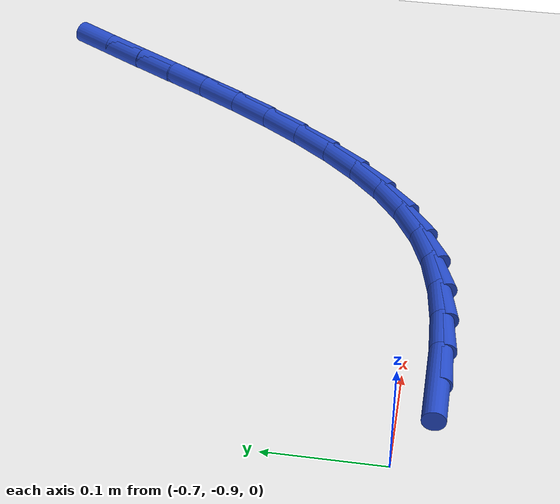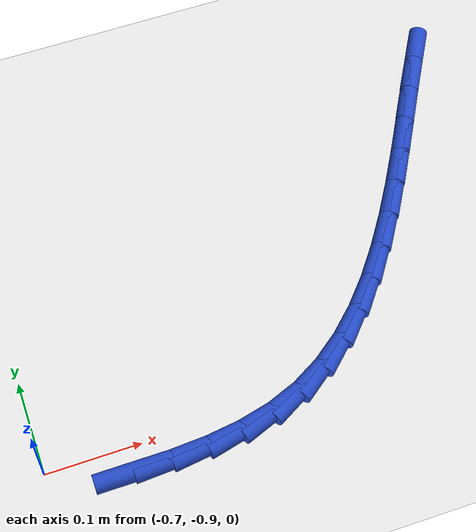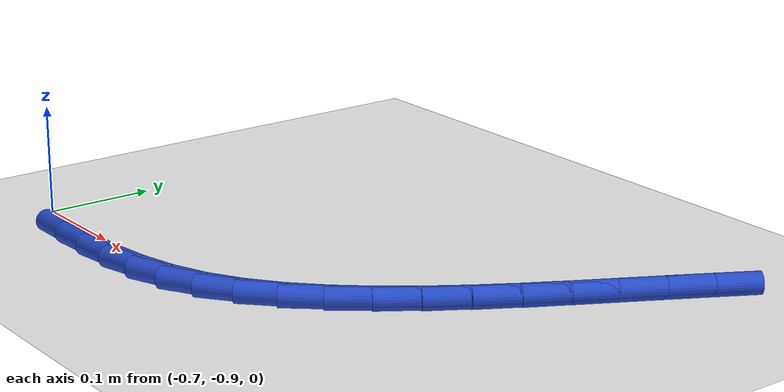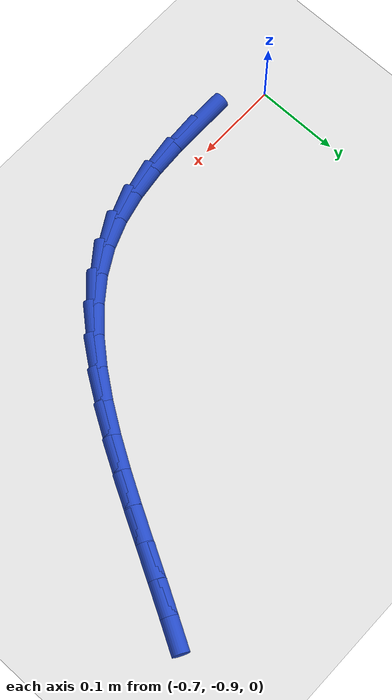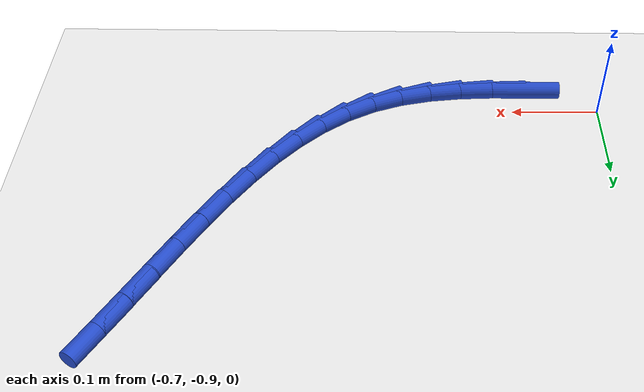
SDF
<sdf version="1.6">
 <world name="default">
  <model name="ground_plane">
   <static>1</static>
   <link name="link">
    <collision name="collision">
     <geometry><plane><normal>0 0 1</normal><size>100 100</size></plane></geometry>
     <surface><friction><ode><mu>100</mu><mu2>50</mu2></ode></friction></surface>
    </collision>
    <visual name="visual">
     <cast_shadows>0</cast_shadows>
     <geometry><plane><normal>0 0 1</normal><size>100 100</size></plane></geometry>
     <material>
      <script><uri>file://media/materials/scripts/gazebo.material</uri><name>Gazebo/WhiteGlow</name></script>
     </material>
    </visual>
   </link>
  </model>
  <model name="line">
   <link name="link_168">
    <pose>-0.6168050845291673 -0.9290518205942572 0.01 0 1.57 0.00258126375401282</pose>
    <collision name="collision">
     <geometry><cylinder><radius>0.01</radius><length>0.08</length></cylinder></geometry>
    </collision>
    <visual name="visual">
     <material>
      <script><name>Gazebo/Blue</name><uri>file://media/materials/scripts/gazebo.material</uri></script>
     </material>
     <geometry><cylinder><radius>0.01</radius><length>0.08</length></cylinder></geometry>
    </visual>
   </link>
   <link name="link_169">
    <pose>-0.5776263432902399 -0.9289506897049601 0.01 0 1.57 0.056820485328284244</pose>
    <collision name="collision">
     <geometry><cylinder><radius>0.01</radius><length>0.08</length></cylinder></geometry>
    </collision>
    <visual name="visual">
     <material>
      <script><name>Gazebo/Blue</name><uri>file://media/materials/scripts/gazebo.material</uri></script>
     </material>
     <geometry><cylinder><radius>0.01</radius><length>0.08</length></cylinder></geometry>
    </visual>
   </link>
   <link name="link_170">
    <pose>-0.539540650285411 -0.926784310208211 0.01 0 1.57 0.13436019567312993</pose>
    <collision name="collision">
     <geometry><cylinder><radius>0.01</radius><length>0.08</length></cylinder></geometry>
    </collision>
    <visual name="visual">
     <material>
      <script><name>Gazebo/Blue</name><uri>file://media/materials/scripts/gazebo.material</uri></script>
     </material>
     <geometry><cylinder><radius>0.01</radius><length>0.08</length></cylinder></geometry>
    </visual>
   </link>
   <link name="link_171">
    <pose>-0.502893801361726 -0.9218305871823091 0.01 0 1.57 0.2381533384140532</pose>
    <collision name="collision">
     <geometry><cylinder><radius>0.01</radius><length>0.08</length></cylinder></geometry>
    </collision>
    <visual name="visual">
     <material>
      <script><name>Gazebo/Blue</name><uri>file://media/materials/scripts/gazebo.material</uri></script>
     </material>
     <geometry><cylinder><radius>0.01</radius><length>0.08</length></cylinder></geometry>
    </visual>
   </link>
   <link name="link_172">
    <pose>-0.46803159236623143 -0.9133674257055546 0.01 0 1.57 0.3699414244305035</pose>
    <collision name="collision">
     <geometry><cylinder><radius>0.01</radius><length>0.08</length></cylinder></geometry>
    </collision>
    <visual name="visual">
     <material>
      <script><name>Gazebo/Blue</name><uri>file://media/materials/scripts/gazebo.material</uri></script>
     </material>
     <geometry><cylinder><radius>0.01</radius><length>0.08</length></cylinder></geometry>
    </visual>
   </link>
   <link name="link_173">
    <pose>-0.43529925593056806 -0.9006739639091229 0.01 0 1.57 0.5172847782864547</pose>
    <collision name="collision">
     <geometry><cylinder><radius>0.01</radius><length>0.08</length></cylinder></geometry>
    </collision>
    <visual name="visual">
     <material>
      <script><name>Gazebo/Blue</name><uri>file://media/materials/scripts/gazebo.material</uri></script>
     </material>
     <geometry><cylinder><radius>0.01</radius><length>0.08</length></cylinder></geometry>
    </visual>
   </link>
   <link name="link_174">
    <pose>-0.4048863449591692 -0.8833701710408869 0.01 0 1.57 0.6499696360064037</pose>
    <collision name="collision">
     <geometry><cylinder><radius>0.01</radius><length>0.08</length></cylinder></geometry>
    </collision>
    <visual name="visual">
     <material>
      <script><name>Gazebo/Blue</name><uri>file://media/materials/scripts/gazebo.material</uri></script>
     </material>
     <geometry><cylinder><radius>0.01</radius><length>0.08</length></cylinder></geometry>
    </visual>
   </link>
   <link name="link_175">
    <pose>-0.3766152953101982 -0.8618797492115845 0.01 0 1.57 0.7616714862303685</pose>
    <collision name="collision">
     <geometry><cylinder><radius>0.01</radius><length>0.08</length></cylinder></geometry>
    </collision>
    <visual name="visual">
     <material>
      <script><name>Gazebo/Blue</name><uri>file://media/materials/scripts/gazebo.material</uri></script>
     </material>
     <geometry><cylinder><radius>0.01</radius><length>0.08</length></cylinder></geometry>
    </visual>
   </link>
   <link name="link_176">
    <pose>-0.3502556527272164 -0.8367421933660312 0.01 0 1.57 0.85268575849969</pose>
    <collision name="collision">
     <geometry><cylinder><radius>0.01</radius><length>0.08</length></cylinder></geometry>
    </collision>
    <visual name="visual">
     <material>
      <script><name>Gazebo/Blue</name><uri>file://media/materials/scripts/gazebo.material</uri></script>
     </material>
     <geometry><cylinder><radius>0.01</radius><length>0.08</length></cylinder></geometry>
    </visual>
   </link>
   <link name="link_177">
    <pose>-0.3255769629537855 -0.8084969984490434 0.01 0 1.57 0.9248449646752012</pose>
    <collision name="collision">
     <geometry><cylinder><radius>0.01</radius><length>0.08</length></cylinder></geometry>
    </collision>
    <visual name="visual">
     <material>
      <script><name>Gazebo/Blue</name><uri>file://media/materials/scripts/gazebo.material</uri></script>
     </material>
     <geometry><cylinder><radius>0.01</radius><length>0.08</length></cylinder></geometry>
    </visual>
   </link>
   <link name="link_178">
    <pose>-0.30234877173346686 -0.777683659405437 0.01 0 1.57 0.9804052128070183</pose>
    <collision name="collision">
     <geometry><cylinder><radius>0.01</radius><length>0.08</length></cylinder></geometry>
    </collision>
    <visual name="visual">
     <material>
      <script><name>Gazebo/Blue</name><uri>file://media/materials/scripts/gazebo.material</uri></script>
     </material>
     <geometry><cylinder><radius>0.01</radius><length>0.08</length></cylinder></geometry>
    </visual>
   </link>
   <link name="link_179">
    <pose>-0.28034062480982197 -0.7448416711800281 0.01 0 1.57 1.0214326457123102</pose>
    <collision name="collision">
     <geometry><cylinder><radius>0.01</radius><length>0.08</length></cylinder></geometry>
    </collision>
    <visual name="visual">
     <material>
      <script><name>Gazebo/Blue</name><uri>file://media/materials/scripts/gazebo.material</uri></script>
     </material>
     <geometry><cylinder><radius>0.01</radius><length>0.08</length></cylinder></geometry>
    </visual>
   </link>
   <link name="link_180">
    <pose>-0.2593220679264125 -0.7105105287176328 0.01 0 1.57 1.04953822265057</pose>
    <collision name="collision">
     <geometry><cylinder><radius>0.01</radius><length>0.08</length></cylinder></geometry>
    </collision>
    <visual name="visual">
     <material>
      <script><name>Gazebo/Blue</name><uri>file://media/materials/scripts/gazebo.material</uri></script>
     </material>
     <geometry><cylinder><radius>0.01</radius><length>0.08</length></cylinder></geometry>
    </visual>
   </link>
   <link name="link_181">
    <pose>-0.2390626468267998 -0.675229726963067 0.01 0 1.57 1.0657893461462018</pose>
    <collision name="collision">
     <geometry><cylinder><radius>0.01</radius><length>0.08</length></cylinder></geometry>
    </collision>
    <visual name="visual">
     <material>
      <script><name>Gazebo/Blue</name><uri>file://media/materials/scripts/gazebo.material</uri></script>
     </material>
     <geometry><cylinder><radius>0.01</radius><length>0.08</length></cylinder></geometry>
    </visual>
   </link>
   <link name="link_182">
    <pose>-0.2193319072545455 -0.6395387608611467 0.01 0 1.57 1.0706858343680723</pose>
    <collision name="collision">
     <geometry><cylinder><radius>0.01</radius><length>0.08</length></cylinder></geometry>
    </collision>
    <visual name="visual">
     <material>
      <script><name>Gazebo/Blue</name><uri>file://media/materials/scripts/gazebo.material</uri></script>
     </material>
     <geometry><cylinder><radius>0.01</radius><length>0.08</length></cylinder></geometry>
    </visual>
   </link>
   <link name="link_183">
    <pose>-0.199899394953211 -0.6039771253566879 0.01 0 1.57 1.0646311620511189</pose>
    <collision name="collision">
     <geometry><cylinder><radius>0.01</radius><length>0.08</length></cylinder></geometry>
    </collision>
    <visual name="visual">
     <material>
      <script><name>Gazebo/Blue</name><uri>file://media/materials/scripts/gazebo.material</uri></script>
     </material>
     <geometry><cylinder><radius>0.01</radius><length>0.08</length></cylinder></geometry>
    </visual>
   </link>
   <link name="link_184">
    <pose>-0.1805460366884838 -0.5690643633642862 0.01 0 1.57 1.0566983665050422</pose>
    <collision name="collision">
     <geometry><cylinder><radius>0.01</radius><length>0.08</length></cylinder></geometry>
    </collision>
    <visual name="visual">
     <material>
      <script><name>Gazebo/Blue</name><uri>file://media/materials/scripts/gazebo.material</uri></script>
     </material>
     <geometry><cylinder><radius>0.01</radius><length>0.08</length></cylinder></geometry>
    </visual>
   </link>
  </model>
 </world>
</sdf>
